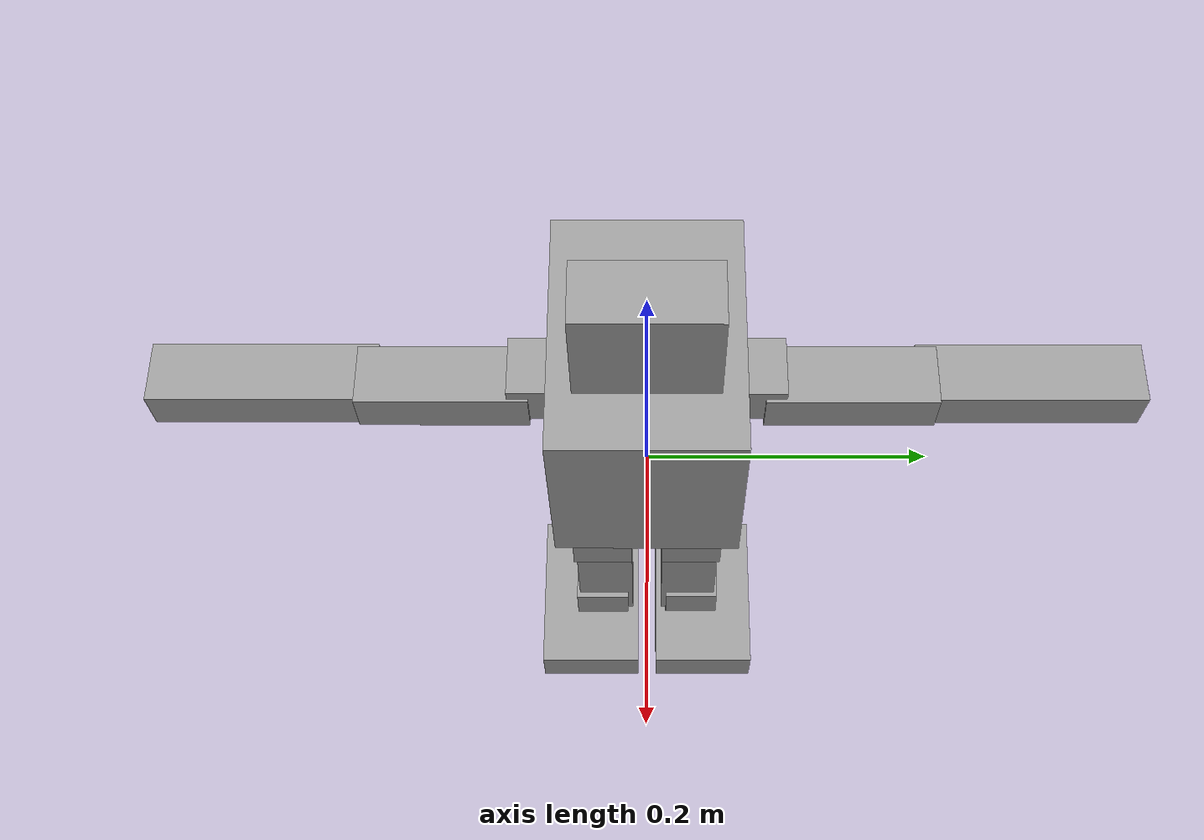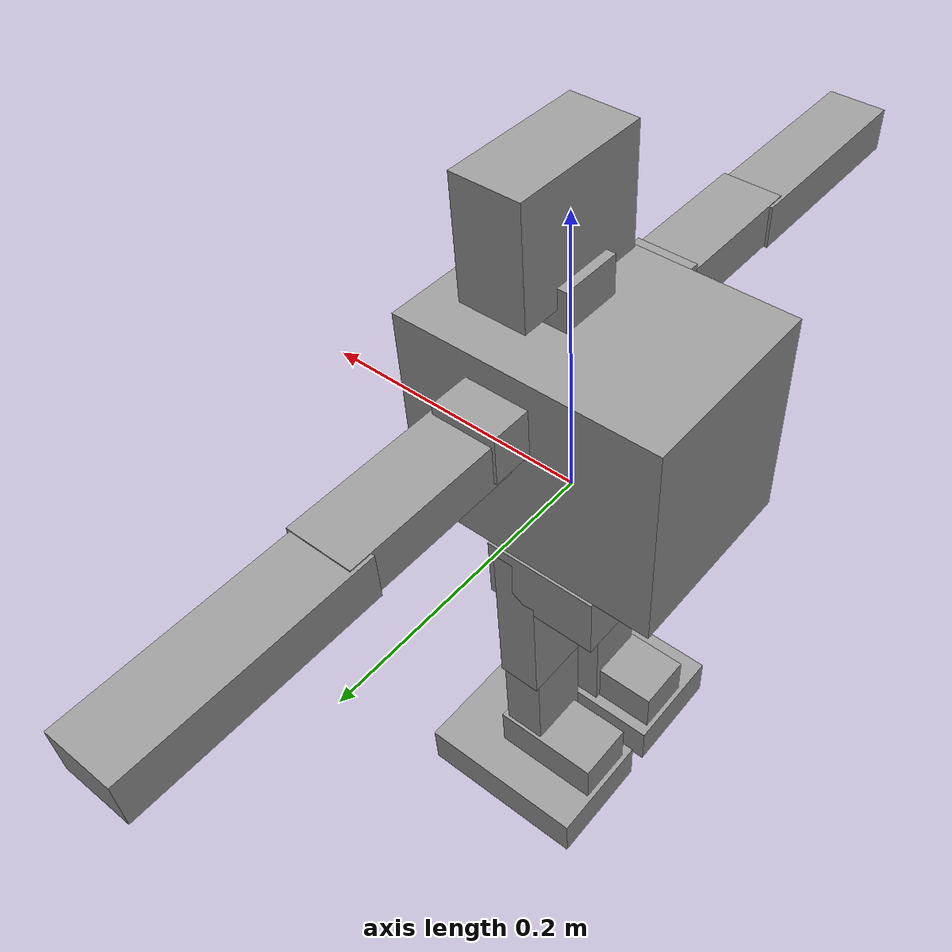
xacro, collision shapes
<?xml version="1.0"?>
<robot xmlns:xacro="http://ros.org/wiki/xacro" name="robotis_op3">

  <xacro:include filename="$(find op3_description)/urdf/robotis_op3.visuals.xacro"/>
  <xacro:include filename="$(find op3_description)/urdf/robotis_op3.inertia.xacro"/>

  <xacro:include filename="$(find op3_description)/urdf/robotis_op3.structure.rleg.xacro"/>
  <xacro:include filename="$(find op3_description)/urdf/robotis_op3.structure.lleg.xacro"/>
  <xacro:include filename="$(find op3_description)/urdf/robotis_op3.structure.rarm.xacro"/>
  <xacro:include filename="$(find op3_description)/urdf/robotis_op3.structure.larm.xacro"/>
  <xacro:include filename="$(find op3_description)/urdf/robotis_op3.structure.head.xacro"/>

  <xacro:include filename="$(find op3_description)/urdf/robotis_op3.gazebo.xacro"/>
  <xacro:include filename="$(find op3_description)/urdf/robotis_op3.transmissions.xacro"/>

  <!-- harness link -->
  <!-- body link -->
  <link name="body_link">
    <visual>
      <xacro:insert_mesh_body_link/>
    </visual>
    <collision>
      <xacro:insert_box_body_link/>
    </collision>
    <inertial>
      <xacro:insert_inertia_body_link/>
    </inertial>
  </link>

  <!-- leg link -->
  <xacro:robotis_op3_l_leg parent="body_link"/>
  <xacro:robotis_op3_r_leg parent="body_link"/>

  <!-- arm link -->
  <xacro:robotis_op3_l_arm parent="body_link"/>
  <xacro:robotis_op3_r_arm parent="body_link"/>

  <!-- head links -->
  <xacro:robotis_op3_head parent="body_link"/>

</robot>

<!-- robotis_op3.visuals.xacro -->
<robot xmlns:xacro="http://ros.org/wiki/xacro">

  <!-- body link -->
  <xacro:macro name="insert_mesh_body_link">
    <origin xyz="0 0 0" rpy="0 0 0"/>
    <geometry>
      <mesh filename="package://op3_description/meshes/body.stl" scale="0.001 0.001 0.001"/>
    </geometry>
    <material name="Grey">
      <color rgba="0.60 0.60 0.60 1.0"/>
    </material>
  </xacro:macro>
  <xacro:macro name="insert_box_body_link">
    <origin xyz="-0.0168 0.0000 0.0683" rpy="0.0000 -0.0000 -0.0000"/>
    <geometry>
      <box size="0.1745 0.1288 0.1453"/>
    </geometry>
  </xacro:macro>

  <!-- right hip yaw link -->
  <xacro:macro name="insert_mesh_r_hip_yaw_link">
    <origin xyz="0 0 0" rpy="0 0 0"/>
    <geometry>
      <mesh filename="package://op3_description/meshes/rl1.stl" scale="0.001 0.001 0.001"/>
    </geometry>
    <material name="Grey">
      <color rgba="0.60 0.60 0.60 1.0"/>
    </material>
  </xacro:macro>
  <xacro:macro name="insert_box_r_hip_yaw_link">
    <origin xyz="-0.0015 0.0000 -0.0155" rpy="0.0000 -0.0000 -0.0000"/>
    <geometry>
      <box size="0.0450 0.0250 0.0310"/>
    </geometry>
  </xacro:macro>

  <!-- right hip roll link -->
  <xacro:macro name="insert_mesh_r_hip_roll_link">
    <origin xyz="0 0 0" rpy="0 0 0"/>
    <geometry>
      <mesh filename="package://op3_description/meshes/rl2.stl" scale="0.001 0.001 0.001"/>
    </geometry>
    <material name="Grey">
      <color rgba="0.60 0.60 0.60 1.0"/>
    </material>
  </xacro:macro>
  <xacro:macro name="insert_box_r_hip_roll_link">
    <origin xyz="0.0039 -0.0022 -0.0120" rpy="0.0000 -0.0000 -0.0000"/>
    <geometry>
      <box size="0.0798 0.0424 0.0465"/>
    </geometry>
  </xacro:macro>

  <!-- right hip pitch link -->
  <xacro:macro name="insert_mesh_r_hip_pitch_link">
    <origin xyz="0 0 0" rpy="0 0 0"/>
    <geometry>
      <mesh filename="package://op3_description/meshes/rl3.stl" scale="0.001 0.001 0.001"/>
    </geometry>
    <material name="Grey">
      <color rgba="0.60 0.60 0.60 1.0"/>
    </material>
  </xacro:macro>
  <xacro:macro name="insert_box_r_hip_pitch_link">
    <origin xyz="0.0004 0.0188 -0.0595" rpy="0.0000 -0.0000 -0.0000"/>
    <geometry>
      <box size="0.0309 0.0464 0.1239"/>
    </geometry>
  </xacro:macro>

  <!-- right knee link -->
  <xacro:macro name="insert_mesh_r_knee_link">
    <origin xyz="0 0 0" rpy="0 0 0"/>
    <geometry>
      <mesh filename="package://op3_description/meshes/rl4.stl" scale="0.001 0.001 0.001"/>
    </geometry>
    <material name="Grey">
      <color rgba="0.60 0.60 0.60 1.0"/>
    </material>
  </xacro:macro>
  <xacro:macro name="insert_box_r_knee_link">
    <origin xyz="0.0000 0.0200 -0.0550" rpy="0.0000 -0.0000 -0.0000"/>
    <geometry>
      <box size="0.0300 0.0440 0.1150"/>
    </geometry>
  </xacro:macro>

  <!-- right ankle pitch link -->
  <xacro:macro name="insert_mesh_r_ank_pitch_link">
    <origin xyz="0 0 0" rpy="0 0 0"/>
    <geometry>
      <mesh filename="package://op3_description/meshes/rl5.stl" scale="0.001 0.001 0.001"/>
    </geometry>
    <material name="Grey">
      <color rgba="0.60 0.60 0.60 1.0"/>
    </material>
  </xacro:macro>
  <xacro:macro name="insert_box_r_ank_pitch_link">
    <origin xyz="-0.0202 0.0168 0.0120" rpy="0.0000 -0.0000 -0.0000"/>
    <geometry>
      <box size="0.0798 0.0424 0.0465"/>
    </geometry>
  </xacro:macro>

  <!-- right ankle roll link -->
  <xacro:macro name="insert_mesh_r_ank_roll_link">
    <origin xyz="0 0 0" rpy="0 0 0"/>
    <geometry>
      <mesh filename="package://op3_description/meshes/rl6.stl" scale="0.001 0.001 0.001"/>
    </geometry>
    <material name="Grey">
      <color rgba="0.60 0.60 0.60 1.0"/>
    </material>
  </xacro:macro>
  <xacro:macro name="insert_box_r_ank_roll_link">
    <origin xyz="0.0240 -0.0125 -0.0140" rpy="0.0000 -0.0000 -0.0000"/>
    <geometry>
      <box size="0.1270 0.0800 0.0330"/>
    </geometry>
  </xacro:macro>

  <!-- left hip yaw link -->
  <xacro:macro name="insert_mesh_l_hip_yaw_link">
    <origin xyz="0 0 0" rpy="0 0 0"/>
    <geometry>
      <mesh filename="package://op3_description/meshes/ll1.stl" scale="0.001 0.001 0.001"/>
    </geometry>
    <material name="Grey">
      <color rgba="0.60 0.60 0.60 1.0"/>
    </material>
  </xacro:macro>
  <xacro:macro name="insert_box_l_hip_yaw_link">
    <origin xyz="-0.0015 0.0000 -0.0155" rpy="0.0000 -0.0000 -0.0000"/>
    <geometry>
      <box size="0.0450 0.0250 0.0310"/>
    </geometry>
  </xacro:macro>

  <!-- left hip roll link -->
  <xacro:macro name="insert_mesh_l_hip_roll_link">
    <origin xyz="0 0 0" rpy="0 0 0"/>
    <geometry>
      <mesh filename="package://op3_description/meshes/ll2.stl" scale="0.001 0.001 0.001"/>
    </geometry>
    <material name="Grey">
      <color rgba="0.60 0.60 0.60 1.0"/>
    </material>
  </xacro:macro>
  <xacro:macro name="insert_box_l_hip_roll_link">
    <origin xyz="0.0039 0.0022 -0.0120" rpy="0.0000 -0.0000 -0.0000"/>
    <geometry>
      <box size="0.0798 0.0424 0.0465"/>
    </geometry>
  </xacro:macro>

  <!-- left hip pitch link -->
  <xacro:macro name="insert_mesh_l_hip_pitch_link">
    <origin xyz="0 0 0" rpy="0 0 0"/>
    <geometry>
      <mesh filename="package://op3_description/meshes/ll3.stl" scale="0.001 0.001 0.001"/>
    </geometry>
    <material name="Grey">
      <color rgba="0.60 0.60 0.60 1.0"/>
    </material>
  </xacro:macro>
  <xacro:macro name="insert_box_l_hip_pitch_link">
    <origin xyz="0.0004 -0.0188 -0.0595" rpy="0.0000 -0.0000 -0.0000"/>
    <geometry>
      <box size="0.0309 0.0464 0.1239"/>
    </geometry>
  </xacro:macro>

  <!-- left knee link -->
  <xacro:macro name="insert_mesh_l_knee_link">
    <origin xyz="0 0 0" rpy="0 0 0"/>
    <geometry>
      <mesh filename="package://op3_description/meshes/ll4.stl" scale="0.001 0.001 0.001"/>
    </geometry>
    <material name="Grey">
      <color rgba="0.60 0.60 0.60 1.0"/>
    </material>
  </xacro:macro>
  <xacro:macro name="insert_box_l_knee_link">
    <origin xyz="-0.0000 -0.0200 -0.0550" rpy="0.0000 -0.0000 -0.0000"/>
    <geometry>
      <box size="0.0300 0.0440 0.1150"/>
    </geometry>
  </xacro:macro>

  <!-- left ankle pitch link -->
  <xacro:macro name="insert_mesh_l_ank_pitch_link">
    <origin xyz="0 0 0" rpy="0 0 0"/>
    <geometry>
      <mesh filename="package://op3_description/meshes/ll5.stl" scale="0.001 0.001 0.001"/>
    </geometry>
    <material name="Grey">
      <color rgba="0.60 0.60 0.60 1.0"/>
    </material>
  </xacro:macro>
  <xacro:macro name="insert_box_l_ank_pitch_link">
    <origin xyz="-0.0206 -0.0168 0.0120" rpy="0.0000 -0.0000 -0.0000"/>
    <geometry>
      <box size="0.0790 0.0424 0.0465"/>
    </geometry>
  </xacro:macro>

  <!-- left ankle roll link -->
  <xacro:macro name="insert_mesh_l_ank_roll_link">
    <origin xyz="0 0 0" rpy="0 0 0"/>
    <geometry>
      <mesh filename="package://op3_description/meshes/ll6.stl" scale="0.001 0.001 0.001"/>
    </geometry>
    <material name="Grey">
      <color rgba="0.60 0.60 0.60 1.0"/>
    </material>
  </xacro:macro>
  <xacro:macro name="insert_box_l_ank_roll_link">
    <origin xyz="0.0240 0.0125 -0.0140" rpy="0.0000 -0.0000 -0.0000"/>
    <geometry>
      <box size="0.1270 0.0800 0.0330"/>
    </geometry>
  </xacro:macro>

  <!-- right shoulder pitch joint -->
  <xacro:macro name="insert_mesh_r_sho_pitch_link">
    <origin xyz="0 0 0" rpy="0 0 0"/>
    <geometry>
      <mesh filename="package://op3_description/meshes/ra1.stl" scale="0.001 0.001 0.001"/>
    </geometry>
    <material name="Grey">
      <color rgba="0.60 0.60 0.60 1.0"/>
    </material>
  </xacro:macro>
  <xacro:macro name="insert_box_r_sho_pitch_link">
    <origin xyz="-0.0000 -0.0155 -0.0038" rpy="0.0000 -0.0000 -0.0000"/>
    <geometry>
      <box size="0.0420 0.0310 0.0325"/>
    </geometry>
  </xacro:macro>

  <!-- right shoulder pitch joint -->
  <xacro:macro name="insert_mesh_r_sho_roll_link">
    <origin xyz="0 0 0" rpy="0 0 0"/>
    <geometry>
      <mesh filename="package://op3_description/meshes/ra2.stl" scale="0.001 0.001 0.001"/>
    </geometry>
    <material name="Grey">
      <color rgba="0.60 0.60 0.60 1.0"/>
    </material>
  </xacro:macro>
  <xacro:macro name="insert_box_r_sho_roll_link">
    <origin xyz="-0.0168 -0.0452 0.0007" rpy="0.0000 -0.0000 -0.0000"/>
    <geometry>
      <box size="0.0424 0.1129 0.0301"/>
    </geometry>
  </xacro:macro>

  <!-- right elbow joint -->
  <xacro:macro name="insert_mesh_r_el_link">
    <origin xyz="0 0 0" rpy="0 0 0"/>
    <geometry>
      <mesh filename="package://op3_description/meshes/ra3.stl" scale="0.001 0.001 0.001"/>
    </geometry>
    <material name="Grey">
      <color rgba="0.60 0.60 0.60 1.0"/>
    </material>
  </xacro:macro>
  <xacro:macro name="insert_box_r_el_link">
    <origin xyz="-0.0190 -0.0720 0.0000" rpy="0.0000 -0.0000 -0.0000"/>
    <geometry>
      <box size="0.0420 0.1490 0.0300"/>
    </geometry>
  </xacro:macro>

  <!-- left shoulder pitch joint -->
  <xacro:macro name="insert_mesh_l_sho_pitch_link">
    <origin xyz="0 0 0" rpy="0 0 0"/>
    <geometry>
      <mesh filename="package://op3_description/meshes/la1.stl" scale="0.001 0.001 0.001"/>
    </geometry>
    <material name="Grey">
      <color rgba="0.60 0.60 0.60 1.0"/>
    </material>
  </xacro:macro>
  <xacro:macro name="insert_box_l_sho_pitch_link">
    <origin xyz="0.0000 0.0155 -0.0038" rpy="0.0000 -0.0000 -0.0000"/>
    <geometry>
      <box size="0.0420 0.0310 0.0325"/>
    </geometry>
  </xacro:macro>

  <!-- left shoulder pitch joint -->
  <xacro:macro name="insert_mesh_l_sho_roll_link">
    <origin xyz="0 0 0" rpy="0 0 0"/>
    <geometry>
      <mesh filename="package://op3_description/meshes/la2.stl" scale="0.001 0.001 0.001"/>
    </geometry>
    <material name="Grey">
      <color rgba="0.60 0.60 0.60 1.0"/>
    </material>
  </xacro:macro>
  <xacro:macro name="insert_box_l_sho_roll_link">
    <origin xyz="-0.0168 0.0452 0.0007" rpy="0.0000 -0.0000 -0.0000"/>
    <geometry>
      <box size="0.0424 0.1129 0.0301"/>
    </geometry>
  </xacro:macro>

  <!-- left elbow joint -->
  <xacro:macro name="insert_mesh_l_el_link">
    <origin xyz="0 0 0" rpy="0 0 0"/>
    <geometry>
      <mesh filename="package://op3_description/meshes/la3.stl" scale="0.001 0.001 0.001"/>
    </geometry>
    <material name="Grey">
      <color rgba="0.60 0.60 0.60 1.0"/>
    </material>
  </xacro:macro>
  <xacro:macro name="insert_box_l_el_link">
    <origin xyz="-0.0190 0.0720 0.0000" rpy="0.0000 -0.0000 -0.0000"/>
    <geometry>
      <box size="0.0420 0.1490 0.0300"/>
    </geometry>
  </xacro:macro>

  <!-- head yaw joint -->
  <xacro:macro name="insert_mesh_head_pan_link">
    <origin xyz="0 0 0" rpy="0 0 0"/>
    <geometry>
      <mesh filename="package://op3_description/meshes/h1.stl" scale="0.001 0.001 0.001"/>
    </geometry>
    <material name="Grey">
      <color rgba="0.60 0.60 0.60 1.0"/>
    </material>
  </xacro:macro>
  <xacro:macro name="insert_box_head_pan_link">
    <origin xyz="0.0038 -0.0000 0.0155" rpy="0.0000 -0.0000 -0.0000"/>
    <geometry>
      <box size="0.0325 0.0420 0.0310"/>
    </geometry>
    <material name="Grey">
      <color rgba="0.60 0.60 0.60 1.0"/>
    </material>
  </xacro:macro>

  <!-- head yaw joint -->
  <xacro:macro name="insert_mesh_head_tilt_link">
    <origin xyz="0 0 0" rpy="0 0 0"/>
    <geometry>
      <mesh filename="package://op3_description/meshes/h2.stl" scale="0.001 0.001 0.001"/>
    </geometry>
    <material name="Grey">
      <color rgba="0.60 0.60 0.60 1.0"/>
    </material>
  </xacro:macro>
  <xacro:macro name="insert_box_head_tilt_link">
    <origin xyz="0.0060 -0.0190 0.0278" rpy="0.0000 -0.0000 -0.0000"/>
    <geometry>
      <box size="0.0445 0.0940 0.0780"/>
    </geometry>
  </xacro:macro>

</robot>

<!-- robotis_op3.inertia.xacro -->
<robot xmlns:xacro="http://ros.org/wiki/xacro">

  <!-- body link -->
  <xacro:macro name="insert_inertia_body_link">
    <origin xyz="-0.01501 0.00013 0.06582"/>
    <mass value="1.34928"/>
    <inertia ixx="0.00340499" ixy="0.0" ixz="0.0"
      iyy="0.00296939" iyz="0.0"
      izz="0.00317331"/>
  </xacro:macro>

  <!-- right hip yaw link -->
  <xacro:macro name="insert_inertia_r_hip_yaw_link">
    <origin xyz="-0.00157 0.00000 0.02076"/>
    <mass value="0.01181"/>
    <inertia ixx="0.00001" ixy="0.0" ixz="0.0"
      iyy="0.00001" iyz="0.0"
      izz="0.00001"/>
  </xacro:macro>

  <!-- right hip roll link -->
  <xacro:macro name="insert_inertia_r_hip_roll_link">
    <origin xyz="-0.0201 -0.00028 -0.01214"/>
    <mass value="0.17886"/>
    <inertia ixx="0.00004661" ixy="0.0" ixz="0.0"
      iyy="0.00012523" iyz="0.0"
      izz="0.00010857"/>
  </xacro:macro>

  <!-- right hip pitch link -->
  <xacro:macro name="insert_inertia_r_hip_pitch_link">
    <origin xyz="0.00059 0.00001 -0.08408"/>
    <mass value="0.11543"/>
    <inertia ixx="0.00010499" ixy="0.0" ixz="0.0"
      iyy="0.00009613" iyz="0.0"
      izz="0.00002493"/>
  </xacro:macro>

  <!-- right knee link -->
  <xacro:macro name="insert_inertia_r_knee_link">
    <origin xyz="0.00000 0.00251 -0.05500"/>
    <mass value="0.04015"/>
    <inertia ixx="0.00003715" ixy="0.0" ixz="0.0"
      iyy="0.00002751" iyz="0.0"
      izz="0.00001511"/>
  </xacro:macro>

  <!-- right ankle pitch link -->
  <xacro:macro name="insert_inertia_r_ank_pitch_link">
    <origin xyz="-0.02022 -0.00028 0.01214"/>
    <mass value="0.17886"/>
    <inertia ixx="0.00004661" ixy="0.0" ixz="0.0"
      iyy="0.00012523" iyz="0.0"
      izz="0.00010857"/>
  </xacro:macro>

  <!-- right ankle roll link -->
  <xacro:macro name="insert_inertia_r_ank_roll_link">
    <origin xyz="-0.00037 -0.01037 -0.02760"/>
    <mass value="0.06934"/>
    <inertia ixx="0.00004034" ixy="0.0" ixz="0.0"
      iyy="0.00007874" iyz="0.0"
      izz="0.00011579"/>
  </xacro:macro>

  <!-- left hip yaw link -->
  <xacro:macro name="insert_inertia_l_hip_yaw_link">
    <origin xyz="-0.00157 0.00000 0.02076"/>
    <mass value="0.01181"/>
    <inertia ixx="0.00001" ixy="0.0" ixz="0.0"
      iyy="0.00001" iyz="0.0"
      izz="0.00001"/>
  </xacro:macro>

  <!-- left hip roll link -->
  <xacro:macro name="insert_inertia_l_hip_roll_link">
    <origin xyz="-0.0201 0.00028 -0.01214"/>
    <mass value="0.17886"/>
    <inertia ixx="0.00004661" ixy="0.0" ixz="0.0"
      iyy="0.00012523" iyz="0.0"
      izz="0.00010857"/>
  </xacro:macro>

  <!-- left hip pitch link -->
  <xacro:macro name="insert_inertia_l_hip_pitch_link">
    <origin xyz="0.00059 -0.00001 -0.08408"/>
    <mass value="0.11543"/>
    <inertia ixx="0.00010499" ixy="0.0" ixz="0.0"
      iyy="0.00009613" iyz="0.0"
      izz="0.00002493"/>
  </xacro:macro>

  <!-- left knee link -->
  <xacro:macro name="insert_inertia_l_knee_link">
    <origin xyz="0.00000 -0.00251 -0.05500"/>
    <mass value="0.04015"/>
    <inertia ixx="0.00003715" ixy="0.0" ixz="0.0"
      iyy="0.00002751" iyz="0.0"
      izz="0.00001511"/>
  </xacro:macro>

  <!-- left ankle pitch link -->
  <xacro:macro name="insert_inertia_l_ank_pitch_link">
    <origin xyz="-0.02022 0.00028 0.01214"/>
    <mass value="0.17886"/>
    <inertia ixx="0.00004661" ixy="0.0" ixz="0.0"
      iyy="0.00012523" iyz="0.0"
      izz="0.00010857"/>
  </xacro:macro>

  <!-- left ankle roll link -->
  <xacro:macro name="insert_inertia_l_ank_roll_link">
    <origin xyz="-0.00037 0.01037 -0.02760"/>
    <mass value="0.06934"/>
    <inertia ixx="0.00004034" ixy="0.0" ixz="0.0"
      iyy="0.00007874" iyz="0.0"
      izz="0.00011579"/>
  </xacro:macro>

  <!-- right shoulder pitch joint -->
  <xacro:macro name="insert_inertia_r_sho_pitch_link">
    <origin xyz="0.0 0.0 0.0"/>
    <mass value="0.01176"/>
    <inertia ixx="0.00001" ixy="0.0" ixz="0.0"
      iyy="0.00001" iyz="0.0"
      izz="0.00001"/>
  </xacro:macro>

  <!-- right shoulder roll joint -->
  <xacro:macro name="insert_inertia_r_sho_roll_link">
    <origin xyz="0.0 -0.04514 0.00028"/>
    <mass value="0.17758"/>
    <inertia ixx="0.00022804" ixy="0.0" ixz="0.0"
      iyy="0.00003042" iyz="0.0"
      izz="0.00023474"/>
  </xacro:macro>

  <!-- right elbow joint -->
  <xacro:macro name="insert_inertia_r_el_link">
    <origin xyz="0.0 -0.07033 0.00380"/>
    <mass value="0.04127"/>
    <inertia ixx="0.00006196" ixy="0.0" ixz="0.0"
      iyy="0.00001231" iyz="0.0"
      izz="0.00006854"/>
  </xacro:macro>

  <!-- left shoulder pitch joint -->
  <xacro:macro name="insert_inertia_l_sho_pitch_link">
    <origin xyz="0.0 0.0 0.0"/>
    <mass value="0.01176"/>
    <inertia ixx="0.00001" ixy="0.0" ixz="0.0"
      iyy="0.00001" iyz="0.0"
      izz="0.00001"/>
  </xacro:macro>

  <!-- left shoulder roll joint -->
  <xacro:macro name="insert_inertia_l_sho_roll_link">
    <origin xyz="0.0 0.04514 0.00028"/>
    <mass value="0.17758"/>
    <inertia ixx="0.00022804" ixy="0.0" ixz="0.0"
      iyy="0.00003042" iyz="0.0"
      izz="0.00023474"/>
  </xacro:macro>

  <!-- left elbow joint -->
  <xacro:macro name="insert_inertia_l_el_link">
    <origin xyz="0.0 0.07033 0.00380"/>
    <mass value="0.04127"/>
    <inertia ixx="0.00006196" ixy="0.0" ixz="0.0"
      iyy="0.00001231" iyz="0.0"
      izz="0.00006854"/>
  </xacro:macro>

  <!-- head yaw joint -->
  <xacro:macro name="insert_inertia_head_pan_link">
    <origin xyz="0.0 0.0 0.0"/>
    <mass value="0.01176"/>
    <inertia ixx="0.00001" ixy="0.0" ixz="0.0"
      iyy="0.00001" iyz="0.0"
      izz="0.00001"/>
  </xacro:macro>

  <!-- head pitch joint -->
  <xacro:macro name="insert_inertia_head_tilt_link">
    <origin xyz="0.00230 0.0 0.0285"/>
    <mass value="0.13631"/>
    <inertia ixx="0.00010612" ixy="0.0" ixz="0.0"
      iyy="0.00008721" iyz="0.0"
      izz="0.00004529"/>
  </xacro:macro>

</robot>

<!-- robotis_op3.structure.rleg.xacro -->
<robot xmlns:xacro="http://ros.org/wiki/xacro">

  <!-- right leg -->
  <xacro:macro name="robotis_op3_r_leg" params="parent">

    <!-- right hip yaw joint -->
    <joint name="r_hip_yaw" type="revolute">
      <parent link="${parent}"/>
      <child link="r_hip_yaw_link"/>
      <origin xyz="0.0 -0.035 0.0" rpy="0 0 0"/>
      <axis xyz="0 0 -1"/>
      <limit effort="1000" velocity="100" lower="${-pi*0.9}" upper="${pi*0.9}"/>
      <dynamics damping="0.1" friction="0.0"/>
    </joint>
    <xacro:insert_transmission name="r_hip_yaw"/>

    <!-- right hip yaw link -->
    <link name="r_hip_yaw_link">
      <visual>
        <xacro:insert_mesh_r_hip_yaw_link/>
      </visual>
      <collision>
        <xacro:insert_box_r_hip_yaw_link/>
      </collision>
      <inertial>
        <xacro:insert_inertia_r_hip_yaw_link/>
      </inertial>
    </link>

    <!-- right hip roll joint -->
    <joint name="r_hip_roll" type="revolute">
      <parent link="r_hip_yaw_link"/>
      <child link="r_hip_roll_link"/>
      <origin xyz="-0.024 0.0 -0.0285" rpy="0 0 0"/>
      <axis xyz="-1 0 0"/>
      <limit effort="1000" velocity="100" lower="${-pi*0.9}" upper="${pi*0.9}"/>
      <dynamics damping="0.1" friction="0.0"/>
    </joint>
    <xacro:insert_transmission name="r_hip_roll"/>

    <!-- right hip roll link -->
    <link name="r_hip_roll_link">
      <visual>
        <xacro:insert_mesh_r_hip_roll_link/>
      </visual>
      <collision>
        <xacro:insert_box_r_hip_roll_link/>
      </collision>
      <inertial>
        <xacro:insert_inertia_r_hip_roll_link/>
      </inertial>
    </link>

    <!-- right hip pitch joint -->
    <joint name="r_hip_pitch" type="revolute">
      <parent link="r_hip_roll_link"/>
      <child link="r_hip_pitch_link"/>
      <origin xyz="0.0241 -0.019 0.0" rpy="0 0 0"/>
      <axis xyz="0 -1 0"/>
      <limit effort="1000" velocity="100" lower="${-pi*0.9}" upper="${pi*0.9}"/>
      <dynamics damping="0.1" friction="0.0"/>
    </joint>
    <xacro:insert_transmission name="r_hip_pitch"/>

    <!-- right hip pitch link -->
    <link name="r_hip_pitch_link">
      <visual>
        <xacro:insert_mesh_r_hip_pitch_link/>
      </visual>
      <collision>
        <xacro:insert_box_r_hip_pitch_link/>
      </collision>
      <inertial>
        <xacro:insert_inertia_r_hip_pitch_link/>
      </inertial>
    </link>

    <!-- right knee joint -->
    <joint name="r_knee" type="revolute">
      <parent link="r_hip_pitch_link"/>
      <child link="r_knee_link"/>
      <origin xyz="0.0 0.0 -0.11015" rpy="0 0 0"/>
      <axis xyz="0 -1 0"/>
      <limit effort="1000" velocity="100" lower="${-pi*0.9}" upper="${pi*0.9}"/>
      <dynamics damping="0.1" friction="0.0"/>
    </joint>
    <xacro:insert_transmission name="r_knee"/>

    <!-- right hip pitch link -->
    <link name="r_knee_link">
      <visual>
        <xacro:insert_mesh_r_knee_link/>
      </visual>
      <collision>
        <xacro:insert_box_r_knee_link/>
      </collision>
      <inertial>
        <xacro:insert_inertia_r_knee_link/>
      </inertial>
    </link>

    <!-- right ankle pitch link -->
    <joint name="r_ank_pitch" type="revolute">
      <parent link="r_knee_link"/>
      <child link="r_ank_pitch_link"/>
      <origin xyz="0 0 -0.110" rpy="0 0 0"/>
      <axis xyz="0 1 0"/>
      <limit effort="1000" velocity="100" lower="${-pi*0.9}" upper="${pi*0.9}"/>
      <dynamics damping="0.1" friction="0.0"/>
    </joint>
    <xacro:insert_transmission name="r_ank_pitch"/>

    <!-- right hip pitch link -->
    <link name="r_ank_pitch_link">
      <visual>
        <xacro:insert_mesh_r_ank_pitch_link/>
      </visual>
      <collision>
        <xacro:insert_box_r_ank_pitch_link/>
      </collision>
      <inertial>
        <xacro:insert_inertia_r_ank_pitch_link/>
      </inertial>
    </link>

    <!-- right ankle roll link -->
    <joint name="r_ank_roll" type="revolute">
      <parent link="r_ank_pitch_link"/>
      <child link="r_ank_roll_link"/>
      <origin xyz="-0.0241 0.019 0" rpy="0 0 0"/>
      <axis xyz="1 0 0"/>
      <limit effort="1000" velocity="100" lower="${-pi*0.9}" upper="${pi*0.9}"/>
      <dynamics damping="0.1" friction="0.0"/>
    </joint>
    <xacro:insert_transmission name="r_ank_roll"/>

    <!-- right hip roll link -->
    <link name="r_ank_roll_link">
      <visual>
        <xacro:insert_mesh_r_ank_roll_link/>
      </visual>
      <collision>
        <xacro:insert_box_r_ank_roll_link/>
      </collision>
      <inertial>
        <xacro:insert_inertia_r_ank_roll_link/>
      </inertial>
    </link>

  </xacro:macro>

</robot>

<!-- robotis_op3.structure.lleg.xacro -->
<robot xmlns:xacro="http://ros.org/wiki/xacro">

  <!-- left leg -->
  <xacro:macro name="robotis_op3_l_leg" params="parent">

    <!-- left hip yaw joint -->
    <joint name="l_hip_yaw" type="revolute">
      <parent link="${parent}"/>
      <child link="l_hip_yaw_link"/>
      <origin xyz="0.0 0.035 0.0" rpy="0 0 0"/>
      <axis xyz="0 0 -1"/>
      <limit effort="1000" velocity="100" lower="${-pi*0.9}" upper="${pi*0.9}"/>
      <dynamics damping="0.1" friction="0.0"/>
    </joint>
    <xacro:insert_transmission name="l_hip_yaw"/>

    <!-- left hip yaw link -->
    <link name="l_hip_yaw_link">
      <visual>
        <xacro:insert_mesh_l_hip_yaw_link/>
      </visual>
      <collision>
        <xacro:insert_box_l_hip_yaw_link/>
      </collision>
      <inertial>
        <xacro:insert_inertia_l_hip_yaw_link/>
      </inertial>
    </link>

    <!-- left hip roll joint -->
    <joint name="l_hip_roll" type="revolute">
      <parent link="l_hip_yaw_link"/>
      <child link="l_hip_roll_link"/>
      <origin xyz="-0.024 0.0 -0.0285" rpy="0 0 0"/>
      <axis xyz="-1 0 0"/>
      <limit effort="1000" velocity="100" lower="${-pi*0.9}" upper="${pi*0.9}"/>
      <dynamics damping="0.1" friction="0.0"/>
    </joint>
    <xacro:insert_transmission name="l_hip_roll"/>

    <!-- left hip roll link -->
    <link name="l_hip_roll_link">
      <visual>
        <xacro:insert_mesh_l_hip_roll_link/>
      </visual>
      <collision>
        <xacro:insert_box_l_hip_roll_link/>
      </collision>
      <inertial>
        <xacro:insert_inertia_l_hip_roll_link/>
      </inertial>
    </link>

    <!-- left hip pitch joint -->
    <joint name="l_hip_pitch" type="revolute">
      <parent link="l_hip_roll_link"/>
      <child link="l_hip_pitch_link"/>
      <origin xyz="0.0241 0.019 0.0" rpy="0 0 0"/>
      <axis xyz="0 1 0"/>
      <limit effort="1000" velocity="100" lower="${-pi*0.9}" upper="${pi*0.9}"/>
      <dynamics damping="0.1" friction="0.0"/>
    </joint>
    <xacro:insert_transmission name="l_hip_pitch"/>

    <!-- left hip pitch link -->
    <link name="l_hip_pitch_link">
      <visual>
        <xacro:insert_mesh_l_hip_pitch_link/>
      </visual>
      <collision>
        <xacro:insert_box_l_hip_pitch_link/>
      </collision>
      <inertial>
        <xacro:insert_inertia_l_hip_pitch_link/>
      </inertial>
    </link>

    <!-- left knee joint -->
    <joint name="l_knee" type="revolute">
      <parent link="l_hip_pitch_link"/>
      <child link="l_knee_link"/>
      <origin xyz="0.0 0.0 -0.11015" rpy="0 0 0"/>
      <axis xyz="0 1 0"/>
      <limit effort="1000" velocity="100" lower="${-pi*0.9}" upper="${pi*0.9}"/>
      <dynamics damping="0.1" friction="0.0"/>
    </joint>
    <xacro:insert_transmission name="l_knee"/>

    <!-- left hip pitch link -->
    <link name="l_knee_link">
      <visual>
        <xacro:insert_mesh_l_knee_link/>
      </visual>
      <collision>
        <xacro:insert_box_l_knee_link/>
      </collision>
      <inertial>
        <xacro:insert_inertia_l_knee_link/>
      </inertial>
    </link>

    <!-- left ankle pitch link -->
    <joint name="l_ank_pitch" type="revolute">
      <parent link="l_knee_link"/>
      <child link="l_ank_pitch_link"/>
      <origin xyz="0 0 -0.110" rpy="0 0 0"/>
      <axis xyz="0 -1 0"/>
      <limit effort="1000" velocity="100" lower="${-pi*0.9}" upper="${pi*0.9}"/>
      <dynamics damping="0.1" friction="0.0"/>
    </joint>
    <xacro:insert_transmission name="l_ank_pitch"/>

    <!-- left hip pitch link -->
    <link name="l_ank_pitch_link">
      <visual>
        <xacro:insert_mesh_l_ank_pitch_link/>
      </visual>
      <collision>
        <xacro:insert_box_l_ank_pitch_link/>
      </collision>
      <inertial>
        <xacro:insert_inertia_l_ank_pitch_link/>
      </inertial>
    </link>

    <!-- left ankle roll link -->
    <joint name="l_ank_roll" type="revolute">
      <parent link="l_ank_pitch_link"/>
      <child link="l_ank_roll_link"/>
      <origin xyz="-0.0241 -0.019 0" rpy="0 0 0"/>
      <axis xyz="1 0 0"/>
      <limit effort="1000" velocity="100" lower="${-pi*0.9}" upper="${pi*0.9}"/>
      <dynamics damping="0.1" friction="0.0"/>
    </joint>
    <xacro:insert_transmission name="l_ank_roll"/>

    <!-- left hip roll link -->
    <link name="l_ank_roll_link">
      <visual>
        <xacro:insert_mesh_l_ank_roll_link/>
      </visual>
      <collision>
        <xacro:insert_box_l_ank_roll_link/>
      </collision>
      <inertial>
        <xacro:insert_inertia_l_ank_roll_link/>
      </inertial>
    </link>

  </xacro:macro>

</robot>

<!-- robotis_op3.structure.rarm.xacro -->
<robot xmlns:xacro="http://ros.org/wiki/xacro">

  <!-- right arm -->
  <xacro:macro name="robotis_op3_r_arm" params="parent">

    <!-- right shoulder pitch joint -->
    <joint name="r_sho_pitch" type="revolute">
      <parent link="${parent}"/>
      <child link="r_sho_pitch_link"/>
      <origin xyz="-0.001 -0.06 0.111" rpy="0 0 0"/>
      <axis xyz="0 -1 0"/>
      <limit effort="1000" velocity="100" lower="${-pi*0.9}" upper="${pi*0.9}"/>
      <dynamics damping="0.1" friction="0.0"/>
    </joint>
    <xacro:insert_transmission name="r_sho_pitch"/>

    <!-- right shoulder pitch link -->
    <link name="r_sho_pitch_link">
      <visual>
        <xacro:insert_mesh_r_sho_pitch_link/>
      </visual>
      <collision>
        <xacro:insert_box_r_sho_pitch_link/>
      </collision>
      <inertial>
        <xacro:insert_inertia_r_sho_pitch_link/>
      </inertial>
    </link>

    <!-- right shoulder roll joint -->
    <joint name="r_sho_roll" type="revolute">
      <parent link="r_sho_pitch_link"/>
      <child link="r_sho_roll_link"/>
      <origin xyz="0.019 -0.0285 -0.010" rpy="0 0 0"/>
      <axis xyz="-1 0 0"/>
      <limit effort="1000" velocity="100" lower="${-pi*0.9}" upper="${pi*0.9}"/>
      <dynamics damping="0.1" friction="0.0"/>
    </joint>
    <xacro:insert_transmission name="r_sho_roll"/>

    <!-- right shoulder roll link -->
    <link name="r_sho_roll_link">
      <visual>
        <xacro:insert_mesh_r_sho_roll_link/>
      </visual>
      <collision>
        <xacro:insert_box_r_sho_roll_link/>
      </collision>
      <inertial>
        <xacro:insert_inertia_r_sho_roll_link/>
      </inertial>
    </link>

    <!-- right elbow joint -->
    <joint name="r_el" type="revolute">
      <parent link="r_sho_roll_link"/>
      <child link="r_el_link"/>
      <origin xyz="0.0 -0.0904 -0.0001" rpy="0 0 0"/>
      <axis xyz="1 0 0"/>
      <limit effort="1000" velocity="100" lower="${-pi*0.9}" upper="${pi*0.9}"/>
      <dynamics damping="0.1" friction="0.0"/>
    </joint>
    <xacro:insert_transmission name="r_el"/>

    <!-- right elbow link -->
    <link name="r_el_link">
      <visual>
        <xacro:insert_mesh_r_el_link/>
      </visual>
      <collision>
        <xacro:insert_box_r_el_link/>
      </collision>
      <inertial>
        <xacro:insert_inertia_r_el_link/>
      </inertial>
    </link>

  </xacro:macro>

</robot>

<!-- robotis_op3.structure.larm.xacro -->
<robot xmlns:xacro="http://ros.org/wiki/xacro">

  <!-- left leg -->
  <xacro:macro name="robotis_op3_l_arm" params="parent">

    <!-- left shoulder pitch joint -->
    <joint name="l_sho_pitch" type="revolute">
      <parent link="${parent}"/>
      <child link="l_sho_pitch_link"/>
      <origin xyz="-0.001 0.06 0.111" rpy="0 0 0"/>
      <axis xyz="0 1 0"/>
      <limit effort="1000" velocity="100" lower="${-pi*0.9}" upper="${pi*0.9}"/>
      <dynamics damping="0.1" friction="0.0"/>
    </joint>
    <xacro:insert_transmission name="l_sho_pitch"/>

    <!-- left shoulder pitch link -->
    <link name="l_sho_pitch_link">
      <visual>
        <xacro:insert_mesh_l_sho_pitch_link/>
      </visual>
      <collision>
        <xacro:insert_box_l_sho_pitch_link/>
      </collision>
      <inertial>
        <xacro:insert_inertia_l_sho_pitch_link/>
      </inertial>
    </link>

    <!-- left shoulder roll joint -->
    <joint name="l_sho_roll" type="revolute">
      <parent link="l_sho_pitch_link"/>
      <child link="l_sho_roll_link"/>
      <origin xyz="0.019 0.0285 -0.010" rpy="0 0 0"/>
      <axis xyz="-1 0 0"/>
      <limit effort="1000" velocity="100" lower="${-pi*0.9}" upper="${pi*0.9}"/>
      <dynamics damping="0.1" friction="0.0"/>
    </joint>
    <xacro:insert_transmission name="l_sho_roll"/>

    <!-- left shoulder roll link -->
    <link name="l_sho_roll_link">
      <visual>
        <xacro:insert_mesh_l_sho_roll_link/>
      </visual>
      <collision>
        <xacro:insert_box_l_sho_roll_link/>
      </collision>
      <inertial>
        <xacro:insert_inertia_l_sho_roll_link/>
      </inertial>
    </link>

    <!-- left elbow joint -->
    <joint name="l_el" type="revolute">
      <parent link="l_sho_roll_link"/>
      <child link="l_el_link"/>
      <origin xyz="0.0 0.0904 -0.0001" rpy="0 0 0"/>
      <axis xyz="1 0 0"/>
      <limit effort="1000" velocity="100" lower="${-pi*0.9}" upper="${pi*0.9}"/>
      <dynamics damping="0.1" friction="0.0"/>
    </joint>
    <xacro:insert_transmission name="l_el"/>

    <!-- left elbow link -->
    <link name="l_el_link">
      <visual>
        <xacro:insert_mesh_l_el_link/>
      </visual>
      <collision>
        <xacro:insert_box_l_el_link/>
      </collision>
      <inertial>
        <xacro:insert_inertia_l_el_link/>
      </inertial>
    </link>

  </xacro:macro>

</robot>

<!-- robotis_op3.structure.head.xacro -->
<robot xmlns:xacro="http://ros.org/wiki/xacro">

  <!-- head -->
  <xacro:macro name="robotis_op3_head" params="parent">

    <!-- head yaw joint -->
    <joint name="head_pan" type="revolute">
      <parent link="${parent}"/>
      <child link="head_pan_link"/>
      <origin xyz="-0.001 0.0 0.1365" rpy="0 0 0"/>
      <axis xyz="0 0 1"/>
      <limit effort="1000" velocity="100" lower="${-pi*0.9}" upper="${pi*0.9}"/>
      <dynamics damping="0.1" friction="0.0"/>
    </joint>
    <xacro:insert_transmission name="head_pan"/>

    <!-- head yaw link -->
    <link name="head_pan_link">
      <visual>
        <xacro:insert_mesh_head_pan_link/>
      </visual>
      <collision>
        <xacro:insert_box_head_pan_link/>
      </collision>
      <inertial>
        <xacro:insert_inertia_head_pan_link/>
      </inertial>
    </link>

    <!-- head pitch joint -->
    <joint name="head_tilt" type="revolute">
      <parent link="head_pan_link"/>
      <child link="head_tilt_link"/>
      <origin xyz="0.010 0.019 0.0285" rpy="0 0 0"/>
      <axis xyz="0 -1 0"/>
      <limit effort="1000" velocity="100" lower="${-pi*0.9}" upper="${pi*0.9}"/>
      <dynamics damping="0.1" friction="0.0"/>
    </joint>
    <xacro:insert_transmission name="head_tilt"/>

    <!-- head yaw link -->
    <link name="head_tilt_link">
      <visual>
        <xacro:insert_mesh_head_tilt_link/>
      </visual>
      <collision>
        <xacro:insert_box_head_tilt_link/>
      </collision>
      <inertial>
        <xacro:insert_inertia_head_tilt_link/>
      </inertial>
    </link>

    <!-- camera joint -->
    <joint name="cam" type="fixed">
      <origin xyz="0.01425 -0.019 0.04975" rpy="${-pi*0.5} 0 ${-pi*0.5}"/>
      <parent link="head_tilt_link"/>
      <child link="cam_link"/>
    </joint>

    <joint name="cam_gazebo" type="fixed">
      <origin xyz="0.01425 -0.019 0.04975" rpy="0 0 0"/>
      <parent link="head_tilt_link"/>
      <child link="cam_gazebo_link"/>
    </joint>

    <!-- camera link -->
    <link name="cam_link"/>

    <!-- camera link -->
    <link name="cam_gazebo_link"/>

  </xacro:macro>

</robot>
